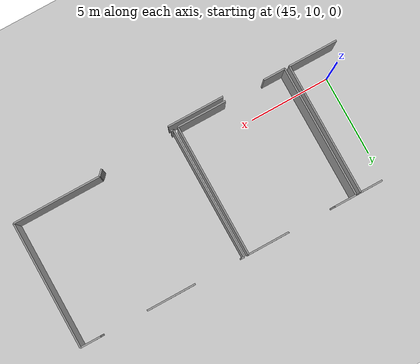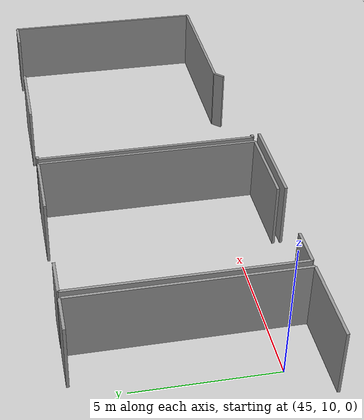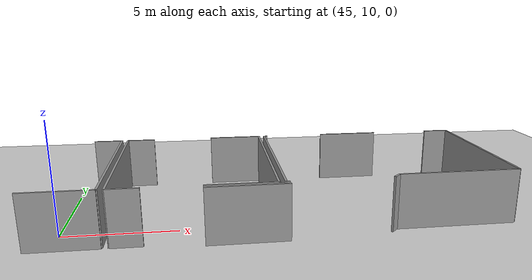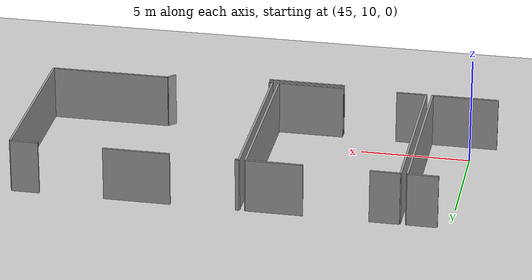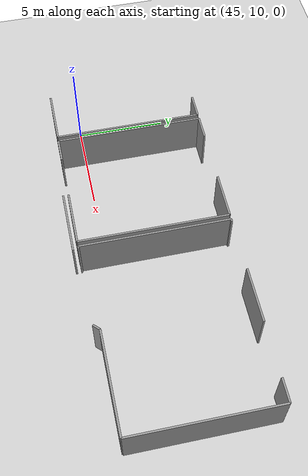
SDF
<sdf version="1.6">
 <world name="default">
  <model name="ground_plane">
   <static>1</static>
   <link name="link">
    <collision name="collision">
     <geometry><plane><normal>0 0 1</normal><size>100 100</size></plane></geometry>
     <surface><friction><ode><mu>100</mu><mu2>50</mu2></ode></friction></surface>
    </collision>
    <visual name="visual">
     <cast_shadows>0</cast_shadows>
     <geometry><plane><normal>0 0 1</normal><size>100 100</size></plane></geometry>
     <material>
      <script><uri>file://media/materials/scripts/gazebo.material</uri><name>Gazebo/Grey</name></script>
     </material>
    </visual>
   </link>
  </model>
  <model name="50041174">
   <static>1</static>
   <link name="Wall_189">
    <collision name="Wall_189_Collision">
     <geometry><box><size>3.53643056613 0.1 2.5</size></box></geometry>
     <pose>1.76821528307 0 1.25 0 0 0</pose>
    </collision>
    <visual name="Wall_189_Visual">
     <pose>1.76821528307 0 1.25 0 0 0</pose>
     <geometry><box><size>3.53643056613 0.1 2.5</size></box></geometry>
     <material>
      <script><uri>file://media/materials/scripts/gazebo.material</uri><name>Gazebo/Grey</name></script>
      <ambient>1 1 1 1</ambient>
     </material>
    </visual>
    <pose>117.595836507 -8.49187611069 0 0 0 0.0</pose>
   </link>
   <link name="Wall_321">
    <collision name="Wall_321_Collision">
     <geometry><box><size>1.38106118304 0.1 2.5</size></box></geometry>
     <pose>0.690530591521 0 1.25 0 0 0</pose>
    </collision>
    <visual name="Wall_321_Visual">
     <pose>0.690530591521 0 1.25 0 0 0</pose>
     <geometry><box><size>1.38106118304 0.1 2.5</size></box></geometry>
     <material>
      <script><uri>file://media/materials/scripts/gazebo.material</uri><name>Gazebo/Grey</name></script>
      <ambient>1 1 1 1</ambient>
     </material>
    </visual>
    <pose>112.069053059 -0.0105356689515 0 0 0 0.0</pose>
   </link>
   <link name="Wall_322">
    <collision name="Wall_322_Collision">
     <geometry><box><size>8.18646864686 0.1 2.5</size></box></geometry>
     <pose>4.09323432343 0 1.25 0 0 0</pose>
    </collision>
    <visual name="Wall_322_Visual">
     <pose>4.09323432343 0 1.25 0 0 0</pose>
     <geometry><box><size>8.18646864686 0.1 2.5</size></box></geometry>
     <material>
      <script><uri>file://media/materials/scripts/gazebo.material</uri><name>Gazebo/Grey</name></script>
      <ambient>1 1 1 1</ambient>
     </material>
    </visual>
    <pose>113.450114242 -0.0105356689515 0 0 0 -1.57079632679</pose>
   </link>
   <link name="Wall_323">
    <collision name="Wall_323_Collision">
     <geometry><box><size>3.05229753745 0.1 2.5</size></box></geometry>
     <pose>1.52614876872 0 1.25 0 0 0</pose>
    </collision>
    <visual name="Wall_323_Visual">
     <pose>1.52614876872 0 1.25 0 0 0</pose>
     <geometry><box><size>3.05229753745 0.1 2.5</size></box></geometry>
     <material>
      <script><uri>file://media/materials/scripts/gazebo.material</uri><name>Gazebo/Grey</name></script>
      <ambient>1 1 1 1</ambient>
     </material>
    </visual>
    <pose>113.450114242 -8.19700431582 0 0 0 3.14159265359</pose>
   </link>
   <link name="Wall_325">
    <collision name="Wall_325_Collision">
     <geometry><box><size>8.19649657273 0.1 2.5</size></box></geometry>
     <pose>4.09824828637 0 1.25 0 0 0</pose>
    </collision>
    <visual name="Wall_325_Visual">
     <pose>4.09824828637 0 1.25 0 0 0</pose>
     <geometry><box><size>8.19649657273 0.1 2.5</size></box></geometry>
     <material>
      <script><uri>file://media/materials/scripts/gazebo.material</uri><name>Gazebo/Grey</name></script>
      <ambient>1 1 1 1</ambient>
     </material>
    </visual>
    <pose>113.748413303 -8.20423965473 0 0 0 1.57079632679</pose>
   </link>
   <link name="Wall_326">
    <collision name="Wall_326_Collision">
     <geometry><box><size>1.35948210206 0.1 2.5</size></box></geometry>
     <pose>0.679741051028 0 1.25 0 0 0</pose>
    </collision>
    <visual name="Wall_326_Visual">
     <pose>0.679741051028 0 1.25 0 0 0</pose>
     <geometry><box><size>1.35948210206 0.1 2.5</size></box></geometry>
     <material>
      <script><uri>file://media/materials/scripts/gazebo.material</uri><name>Gazebo/Grey</name></script>
      <ambient>1 1 1 1</ambient>
     </material>
    </visual>
    <pose>113.748413303 -0.00774308200051 0 0 0 0.0</pose>
   </link>
   <link name="Wall_327">
    <collision name="Wall_327_Collision">
     <geometry><box><size>2.58314292968 0.1 2.5</size></box></geometry>
     <pose>1.29157146484 0 1.25 0 0 0</pose>
    </collision>
    <visual name="Wall_327_Visual">
     <pose>1.29157146484 0 1.25 0 0 0</pose>
     <geometry><box><size>2.58314292968 0.1 2.5</size></box></geometry>
     <material>
      <script><uri>file://media/materials/scripts/gazebo.material</uri><name>Gazebo/Grey</name></script>
      <ambient>1 1 1 1</ambient>
     </material>
    </visual>
    <pose>118.073115004 -0.00774308200051 0 0 0 0.0</pose>
   </link>
   <link name="Wall_328">
    <collision name="Wall_328_Collision">
     <geometry><box><size>8.19865448083 0.1 2.5</size></box></geometry>
     <pose>4.09932724042 0 1.25 0 0 0</pose>
    </collision>
    <visual name="Wall_328_Visual">
     <pose>4.09932724042 0 1.25 0 0 0</pose>
     <geometry><box><size>8.19865448083 0.1 2.5</size></box></geometry>
     <material>
      <script><uri>file://media/materials/scripts/gazebo.material</uri><name>Gazebo/Grey</name></script>
      <ambient>1 1 1 1</ambient>
     </material>
    </visual>
    <pose>120.656257933 -0.00774308200051 0 0 0 -1.57079632679</pose>
   </link>
   <link name="Wall_329">
    <collision name="Wall_329_Collision">
     <geometry><box><size>3.05788271135 0.1 2.5</size></box></geometry>
     <pose>1.52894135567 0 1.25 0 0 0</pose>
    </collision>
    <visual name="Wall_329_Visual">
     <pose>1.52894135567 0 1.25 0 0 0</pose>
     <geometry><box><size>3.05788271135 0.1 2.5</size></box></geometry>
     <material>
      <script><uri>file://media/materials/scripts/gazebo.material</uri><name>Gazebo/Grey</name></script>
      <ambient>1 1 1 1</ambient>
     </material>
    </visual>
    <pose>120.656257933 -8.20639756283 0 0 0 3.14159265359</pose>
   </link>
   <link name="Wall_330">
    <collision name="Wall_330_Collision">
     <geometry><box><size>1.36709995137 0.1 2.5</size></box></geometry>
     <pose>0.683549975685 0 1.25 0 0 0</pose>
    </collision>
    <visual name="Wall_330_Visual">
     <pose>0.683549975685 0 1.25 0 0 0</pose>
     <geometry><box><size>1.36709995137 0.1 2.5</size></box></geometry>
     <material>
      <script><uri>file://media/materials/scripts/gazebo.material</uri><name>Gazebo/Grey</name></script>
      <ambient>1 1 1 1</ambient>
     </material>
    </visual>
    <pose>115.115511551 -8.20639756283 0 0 0 3.14001419622</pose>
   </link>
   <link name="Wall_331">
    <collision name="Wall_331_Collision">
     <geometry><box><size>0.16247778624 0.1 2.5</size></box></geometry>
     <pose>0.0812388931201 0 1.25 0 0 0</pose>
    </collision>
    <visual name="Wall_331_Visual">
     <pose>0.0812388931201 0 1.25 0 0 0</pose>
     <geometry><box><size>0.16247778624 0.1 2.5</size></box></geometry>
     <material>
      <script><uri>file://media/materials/scripts/gazebo.material</uri><name>Gazebo/Grey</name></script>
      <ambient>1 1 1 1</ambient>
     </material>
    </visual>
    <pose>120.94567149 -0.005839045443 0 0 0 0.0</pose>
   </link>
   <link name="Wall_332">
    <collision name="Wall_332_Collision">
     <geometry><box><size>3.04899720741 0.1 2.5</size></box></geometry>
     <pose>1.52449860371 0 1.25 0 0 0</pose>
    </collision>
    <visual name="Wall_332_Visual">
     <pose>1.52449860371 0 1.25 0 0 0</pose>
     <geometry><box><size>3.04899720741 0.1 2.5</size></box></geometry>
     <material>
      <script><uri>file://media/materials/scripts/gazebo.material</uri><name>Gazebo/Grey</name></script>
      <ambient>1 1 1 1</ambient>
     </material>
    </visual>
    <pose>124.059405941 -0.005839045443 0 0 0 0.0</pose>
   </link>
   <link name="Wall_333">
    <collision name="Wall_333_Collision">
     <geometry><box><size>1.27316577812 0.1 2.5</size></box></geometry>
     <pose>0.636582889058 0 1.25 0 0 0</pose>
    </collision>
    <visual name="Wall_333_Visual">
     <pose>0.636582889058 0 1.25 0 0 0</pose>
     <geometry><box><size>1.27316577812 0.1 2.5</size></box></geometry>
     <material>
      <script><uri>file://media/materials/scripts/gazebo.material</uri><name>Gazebo/Grey</name></script>
      <ambient>1 1 1 1</ambient>
     </material>
    </visual>
    <pose>130.064737243 -0.005839045443 0 0 0 0.0</pose>
   </link>
   <link name="Wall_334">
    <collision name="Wall_334_Collision">
     <geometry><box><size>7.8773800457 0.1 2.5</size></box></geometry>
     <pose>3.93869002285 0 1.25 0 0 0</pose>
    </collision>
    <visual name="Wall_334_Visual">
     <pose>3.93869002285 0 1.25 0 0 0</pose>
     <geometry><box><size>7.8773800457 0.1 2.5</size></box></geometry>
     <material>
      <script><uri>file://media/materials/scripts/gazebo.material</uri><name>Gazebo/Grey</name></script>
      <ambient>1 1 1 1</ambient>
     </material>
    </visual>
    <pose>131.337903021 -0.005839045443 0 0 0 -1.57079632679</pose>
   </link>
   <link name="Wall_335">
    <collision name="Wall_335_Collision">
     <geometry><box><size>5.47473978167 0.1 2.5</size></box></geometry>
     <pose>2.73736989084 0 1.25 0 0 0</pose>
    </collision>
    <visual name="Wall_335_Visual">
     <pose>2.73736989084 0 1.25 0 0 0</pose>
     <geometry><box><size>5.47473978167 0.1 2.5</size></box></geometry>
     <material>
      <script><uri>file://media/materials/scripts/gazebo.material</uri><name>Gazebo/Grey</name></script>
      <ambient>1 1 1 1</ambient>
     </material>
    </visual>
    <pose>131.337903021 -7.88321909114 0 0 0 3.14159265359</pose>
   </link>
   <link name="Wall_336">
    <collision name="Wall_336_Collision">
     <geometry><box><size>0.437344555997 0.1 2.5</size></box></geometry>
     <pose>0.218672277998 0 1.25 0 0 0</pose>
    </collision>
    <visual name="Wall_336_Visual">
     <pose>0.218672277998 0 1.25 0 0 0</pose>
     <geometry><box><size>0.437344555997 0.1 2.5</size></box></geometry>
     <material>
      <script><uri>file://media/materials/scripts/gazebo.material</uri><name>Gazebo/Grey</name></script>
      <ambient>1 1 1 1</ambient>
     </material>
    </visual>
    <pose>125.863163239 -7.88321909114 0 0 0 -2.34141724078</pose>
   </link>
   <link name="Wall_337">
    <collision name="Wall_337_Collision">
     <geometry><box><size>0.158669713125 0.1 2.5</size></box></geometry>
     <pose>0.0793348565626 0 1.25 0 0 0</pose>
    </collision>
    <visual name="Wall_337_Visual">
     <pose>0.0793348565626 0 1.25 0 0 0</pose>
     <geometry><box><size>0.158669713125 0.1 2.5</size></box></geometry>
     <material>
      <script><uri>file://media/materials/scripts/gazebo.material</uri><name>Gazebo/Grey</name></script>
      <ambient>1 1 1 1</ambient>
     </material>
    </visual>
    <pose>121.11195735 -8.19700431582 0 0 0 3.14159265359</pose>
   </link>
   <link name="Wall_338">
    <collision name="Wall_338_Collision">
     <geometry><box><size>8.19116881112 0.1 2.5</size></box></geometry>
     <pose>4.09558440556 0 1.25 0 0 0</pose>
    </collision>
    <visual name="Wall_338_Visual">
     <pose>4.09558440556 0 1.25 0 0 0</pose>
     <geometry><box><size>8.19116881112 0.1 2.5</size></box></geometry>
     <material>
      <script><uri>file://media/materials/scripts/gazebo.material</uri><name>Gazebo/Grey</name></script>
      <ambient>1 1 1 1</ambient>
     </material>
    </visual>
    <pose>120.953287636 -8.19700431582 0 0 0 1.57172612662</pose>
   </link>
   <pose>-66.5 16.7804645849 0 0 0 0</pose>
  </model>
 </world>
</sdf>
